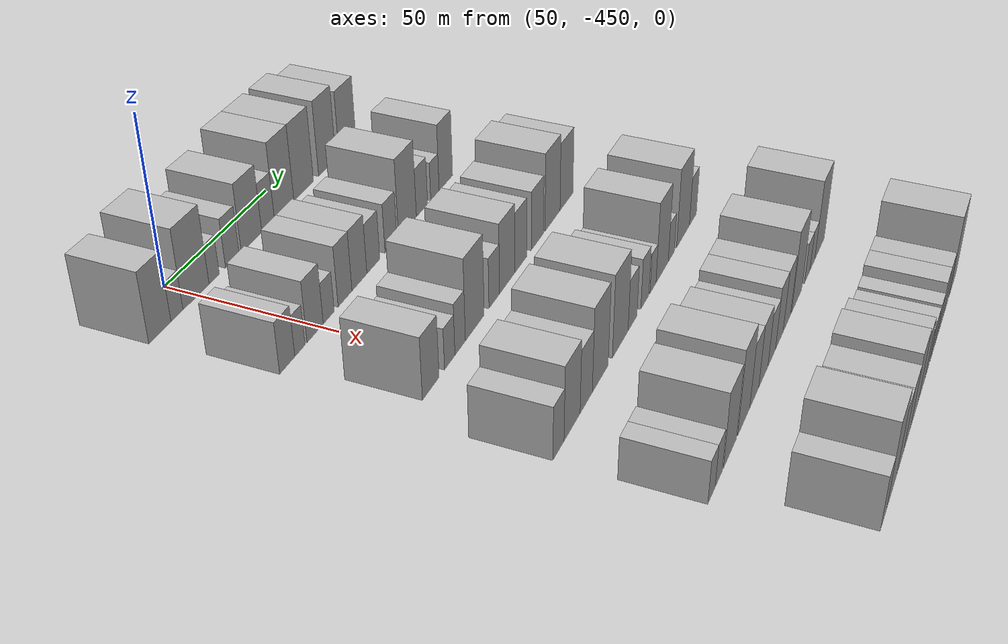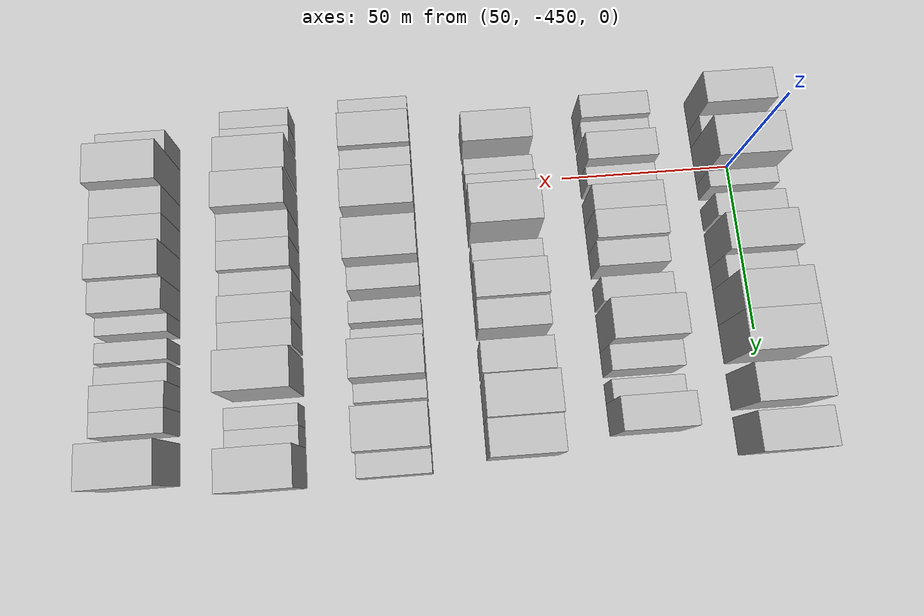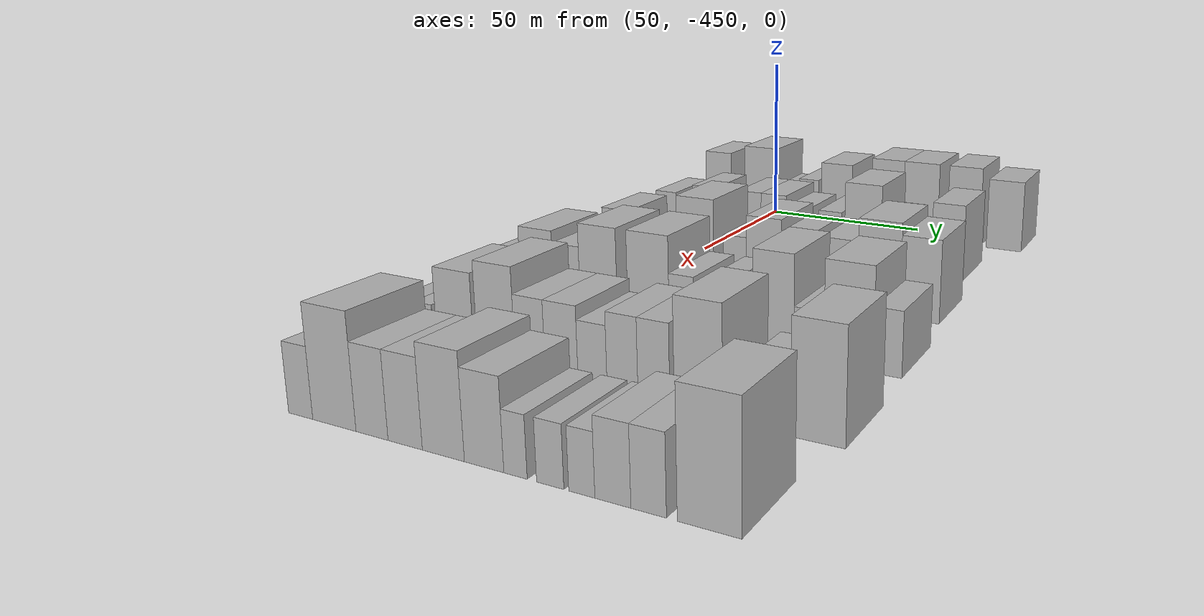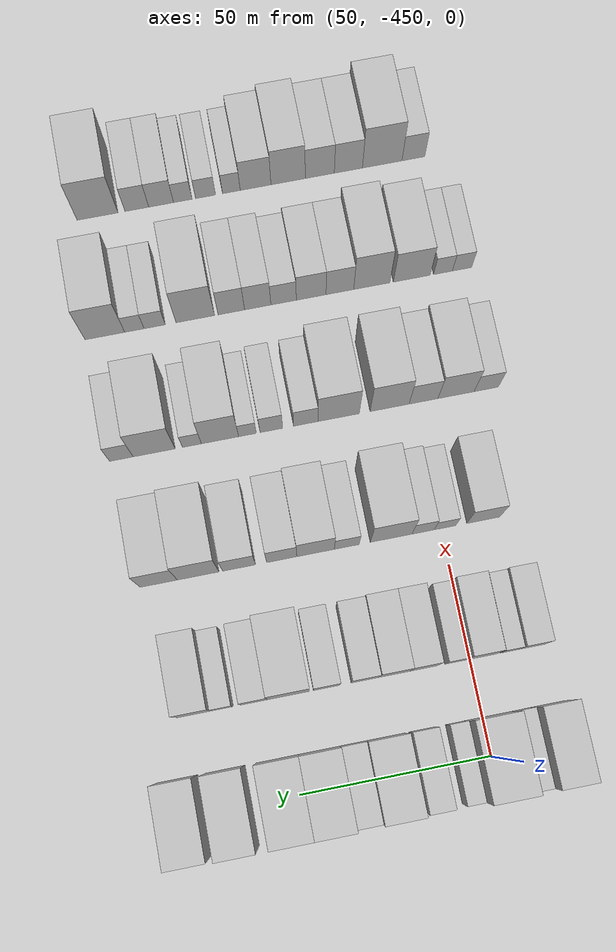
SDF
<sdf version="1.6">
 <world name="default">
  <model name="building_12">
   <static>1</static>
   <pose>50.0000 -466.8531 0 0.000000 0.000000 0.000000</pose>
   <link name="link">
    <pose>0 0 10.50 0 0 0</pose>
    <collision name="collision"><geometry><box><size>20.0000 9.4872 21.0000</size></box></geometry></collision>
    <visual name="visual">
     <cast_shadows>0</cast_shadows>
     <geometry><box><size>20.0000 9.4872 21.0000</size></box></geometry>
     <material>
      <script>
       <uri>model://HANNAS_wall/materials/scripts</uri>
       <uri>model://HANNAS_wall/materials/textures</uri>
       <name>vrc/HANNAS_wall</name>
      </script>
     </material>
    </visual>
   </link>
  </model>
  <model name="building_13">
   <static>1</static>
   <pose>50.0000 -459.4603 0 0.000000 0.000000 0.000000</pose>
   <link name="link">
    <pose>0 0 6.00 0 0 0</pose>
    <collision name="collision"><geometry><box><size>20.0000 5.2984 12.0000</size></box></geometry></collision>
    <visual name="visual">
     <cast_shadows>0</cast_shadows>
     <geometry><box><size>20.0000 5.2984 12.0000</size></box></geometry>
     <material>
      <script>
       <uri>model://HANNAS_wall/materials/scripts</uri>
       <uri>model://HANNAS_wall/materials/textures</uri>
       <name>vrc/HANNAS_wall</name>
      </script>
     </material>
    </visual>
   </link>
  </model>
  <model name="building_14">
   <static>1</static>
   <pose>50.0000 -450.8543 0 0.000000 0.000000 0.000000</pose>
   <link name="link">
    <pose>0 0 12.00 0 0 0</pose>
    <collision name="collision"><geometry><box><size>20.0000 11.9135 24.0000</size></box></geometry></collision>
    <visual name="visual">
     <cast_shadows>0</cast_shadows>
     <geometry><box><size>20.0000 11.9135 24.0000</size></box></geometry>
     <material>
      <script>
       <uri>model://HANNAS_wall/materials/scripts</uri>
       <uri>model://HANNAS_wall/materials/textures</uri>
       <name>vrc/HANNAS_wall</name>
      </script>
     </material>
    </visual>
   </link>
  </model>
  <model name="building_15">
   <static>1</static>
   <pose>50.0000 -442.4723 0 0.000000 0.000000 0.000000</pose>
   <link name="link">
    <pose>0 0 6.00 0 0 0</pose>
    <collision name="collision"><geometry><box><size>20.0000 4.8505 12.0000</size></box></geometry></collision>
    <visual name="visual">
     <cast_shadows>0</cast_shadows>
     <geometry><box><size>20.0000 4.8505 12.0000</size></box></geometry>
     <material>
      <script>
       <uri>model://HANNAS_wall/materials/scripts</uri>
       <uri>model://HANNAS_wall/materials/textures</uri>
       <name>vrc/HANNAS_wall</name>
      </script>
     </material>
    </visual>
   </link>
  </model>
  <model name="building_16">
   <static>1</static>
   <pose>50.0000 -433.7049 0 0.000000 0.000000 0.000000</pose>
   <link name="link">
    <pose>0 0 7.50 0 0 0</pose>
    <collision name="collision"><geometry><box><size>20.0000 6.6844 15.0000</size></box></geometry></collision>
    <visual name="visual">
     <cast_shadows>0</cast_shadows>
     <geometry><box><size>20.0000 6.6844 15.0000</size></box></geometry>
     <material>
      <script>
       <uri>model://HANNAS_wall/materials/scripts</uri>
       <uri>model://HANNAS_wall/materials/textures</uri>
       <name>vrc/HANNAS_wall</name>
      </script>
     </material>
    </visual>
   </link>
  </model>
  <model name="building_17">
   <static>1</static>
   <pose>50.0000 -424.1351 0 0.000000 0.000000 0.000000</pose>
   <link name="link">
    <pose>0 0 10.50 0 0 0</pose>
    <collision name="collision"><geometry><box><size>20.0000 10.4550 21.0000</size></box></geometry></collision>
    <visual name="visual">
     <cast_shadows>0</cast_shadows>
     <geometry><box><size>20.0000 10.4550 21.0000</size></box></geometry>
     <material>
      <script>
       <uri>model://HANNAS_wall/materials/scripts</uri>
       <uri>model://HANNAS_wall/materials/textures</uri>
       <name>vrc/HANNAS_wall</name>
      </script>
     </material>
    </visual>
   </link>
  </model>
  <model name="building_18">
   <static>1</static>
   <pose>50.0000 -415.5861 0 0.000000 0.000000 0.000000</pose>
   <link name="link">
    <pose>0 0 7.50 0 0 0</pose>
    <collision name="collision"><geometry><box><size>20.0000 6.6431 15.0000</size></box></geometry></collision>
    <visual name="visual">
     <cast_shadows>0</cast_shadows>
     <geometry><box><size>20.0000 6.6431 15.0000</size></box></geometry>
     <material>
      <script>
       <uri>model://HANNAS_wall/materials/scripts</uri>
       <uri>model://HANNAS_wall/materials/textures</uri>
       <name>vrc/HANNAS_wall</name>
      </script>
     </material>
    </visual>
   </link>
  </model>
  <model name="building_19">
   <static>1</static>
   <pose>50.0000 -406.9946 0 0.000000 0.000000 0.000000</pose>
   <link name="link">
    <pose>0 0 12.00 0 0 0</pose>
    <collision name="collision"><geometry><box><size>20.0000 10.5398 24.0000</size></box></geometry></collision>
    <visual name="visual">
     <cast_shadows>0</cast_shadows>
     <geometry><box><size>20.0000 10.5398 24.0000</size></box></geometry>
     <material>
      <script>
       <uri>model://HANNAS_wall/materials/scripts</uri>
       <uri>model://HANNAS_wall/materials/textures</uri>
       <name>vrc/HANNAS_wall</name>
      </script>
     </material>
    </visual>
   </link>
  </model>
  <model name="building_20">
   <static>1</static>
   <pose>50.0000 -396.1728 0 0.000000 0.000000 0.000000</pose>
   <link name="link">
    <pose>0 0 12.00 0 0 0</pose>
    <collision name="collision"><geometry><box><size>20.0000 11.1037 24.0000</size></box></geometry></collision>
    <visual name="visual">
     <cast_shadows>0</cast_shadows>
     <geometry><box><size>20.0000 11.1037 24.0000</size></box></geometry>
     <material>
      <script>
       <uri>model://HANNAS_wall/materials/scripts</uri>
       <uri>model://HANNAS_wall/materials/textures</uri>
       <name>vrc/HANNAS_wall</name>
      </script>
     </material>
    </visual>
   </link>
  </model>
  <model name="building_21">
   <static>1</static>
   <pose>50.0000 -382.5288 0 0.000000 0.000000 0.000000</pose>
   <link name="link">
    <pose>0 0 12.00 0 0 0</pose>
    <collision name="collision"><geometry><box><size>20.0000 10.1843 24.0000</size></box></geometry></collision>
    <visual name="visual">
     <cast_shadows>0</cast_shadows>
     <geometry><box><size>20.0000 10.1843 24.0000</size></box></geometry>
     <material>
      <script>
       <uri>model://HANNAS_wall/materials/scripts</uri>
       <uri>model://HANNAS_wall/materials/textures</uri>
       <name>vrc/HANNAS_wall</name>
      </script>
     </material>
    </visual>
   </link>
  </model>
  <model name="building_22">
   <static>1</static>
   <pose>50.0000 -370.1990 0 0.000000 0.000000 0.000000</pose>
   <link name="link">
    <pose>0 0 10.50 0 0 0</pose>
    <collision name="collision"><geometry><box><size>20.0000 10.4753 21.0000</size></box></geometry></collision>
    <visual name="visual">
     <cast_shadows>0</cast_shadows>
     <geometry><box><size>20.0000 10.4753 21.0000</size></box></geometry>
     <material>
      <script>
       <uri>model://HANNAS_wall/materials/scripts</uri>
       <uri>model://HANNAS_wall/materials/textures</uri>
       <name>vrc/HANNAS_wall</name>
      </script>
     </material>
    </visual>
   </link>
  </model>
  <model name="building_141">
   <static>1</static>
   <pose>85.0000 -466.3187 0 0.000000 0.000000 0.000000</pose>
   <link name="link">
    <pose>0 0 7.50 0 0 0</pose>
    <collision name="collision"><geometry><box><size>20.0000 7.1160 15.0000</size></box></geometry></collision>
    <visual name="visual">
     <cast_shadows>0</cast_shadows>
     <geometry><box><size>20.0000 7.1160 15.0000</size></box></geometry>
     <material>
      <script>
       <uri>model://HANNAS_wall/materials/scripts</uri>
       <uri>model://HANNAS_wall/materials/textures</uri>
       <name>vrc/HANNAS_wall</name>
      </script>
     </material>
    </visual>
   </link>
  </model>
  <model name="building_142">
   <static>1</static>
   <pose>85.0000 -460.3251 0 0.000000 0.000000 0.000000</pose>
   <link name="link">
    <pose>0 0 6.00 0 0 0</pose>
    <collision name="collision"><geometry><box><size>20.0000 4.8712 12.0000</size></box></geometry></collision>
    <visual name="visual">
     <cast_shadows>0</cast_shadows>
     <geometry><box><size>20.0000 4.8712 12.0000</size></box></geometry>
     <material>
      <script>
       <uri>model://HANNAS_wall/materials/scripts</uri>
       <uri>model://HANNAS_wall/materials/textures</uri>
       <name>vrc/HANNAS_wall</name>
      </script>
     </material>
    </visual>
   </link>
  </model>
  <model name="building_143">
   <static>1</static>
   <pose>85.0000 -452.8445 0 0.000000 0.000000 0.000000</pose>
   <link name="link">
    <pose>0 0 9.00 0 0 0</pose>
    <collision name="collision"><geometry><box><size>20.0000 8.0899 18.0000</size></box></geometry></collision>
    <visual name="visual">
     <cast_shadows>0</cast_shadows>
     <geometry><box><size>20.0000 8.0899 18.0000</size></box></geometry>
     <material>
      <script>
       <uri>model://HANNAS_wall/materials/scripts</uri>
       <uri>model://HANNAS_wall/materials/textures</uri>
       <name>vrc/HANNAS_wall</name>
      </script>
     </material>
    </visual>
   </link>
  </model>
  <model name="building_144">
   <static>1</static>
   <pose>85.0000 -445.9907 0 0.000000 0.000000 0.000000</pose>
   <link name="link">
    <pose>0 0 6.00 0 0 0</pose>
    <collision name="collision"><geometry><box><size>20.0000 5.6178 12.0000</size></box></geometry></collision>
    <visual name="visual">
     <cast_shadows>0</cast_shadows>
     <geometry><box><size>20.0000 5.6178 12.0000</size></box></geometry>
     <material>
      <script>
       <uri>model://HANNAS_wall/materials/scripts</uri>
       <uri>model://HANNAS_wall/materials/textures</uri>
       <name>vrc/HANNAS_wall</name>
      </script>
     </material>
    </visual>
   </link>
  </model>
  <model name="building_145">
   <static>1</static>
   <pose>85.0000 -437.4917 0 0.000000 0.000000 0.000000</pose>
   <link name="link">
    <pose>0 0 9.00 0 0 0</pose>
    <collision name="collision"><geometry><box><size>20.0000 7.3803 18.0000</size></box></geometry></collision>
    <visual name="visual">
     <cast_shadows>0</cast_shadows>
     <geometry><box><size>20.0000 7.3803 18.0000</size></box></geometry>
     <material>
      <script>
       <uri>model://HANNAS_wall/materials/scripts</uri>
       <uri>model://HANNAS_wall/materials/textures</uri>
       <name>vrc/HANNAS_wall</name>
      </script>
     </material>
    </visual>
   </link>
  </model>
  <model name="building_146">
   <static>1</static>
   <pose>85.0000 -429.7199 0 0.000000 0.000000 0.000000</pose>
   <link name="link">
    <pose>0 0 9.00 0 0 0</pose>
    <collision name="collision"><geometry><box><size>20.0000 8.1631 18.0000</size></box></geometry></collision>
    <visual name="visual">
     <cast_shadows>0</cast_shadows>
     <geometry><box><size>20.0000 8.1631 18.0000</size></box></geometry>
     <material>
      <script>
       <uri>model://HANNAS_wall/materials/scripts</uri>
       <uri>model://HANNAS_wall/materials/textures</uri>
       <name>vrc/HANNAS_wall</name>
      </script>
     </material>
    </visual>
   </link>
  </model>
  <model name="building_147">
   <static>1</static>
   <pose>85.0000 -421.9859 0 0.000000 0.000000 0.000000</pose>
   <link name="link">
    <pose>0 0 7.50 0 0 0</pose>
    <collision name="collision"><geometry><box><size>20.0000 7.3049 15.0000</size></box></geometry></collision>
    <visual name="visual">
     <cast_shadows>0</cast_shadows>
     <geometry><box><size>20.0000 7.3049 15.0000</size></box></geometry>
     <material>
      <script>
       <uri>model://HANNAS_wall/materials/scripts</uri>
       <uri>model://HANNAS_wall/materials/textures</uri>
       <name>vrc/HANNAS_wall</name>
      </script>
     </material>
    </visual>
   </link>
  </model>
  <model name="building_148">
   <static>1</static>
   <pose>85.0000 -411.8537 0 0.000000 0.000000 0.000000</pose>
   <link name="link">
    <pose>0 0 7.50 0 0 0</pose>
    <collision name="collision"><geometry><box><size>20.0000 6.9596 15.0000</size></box></geometry></collision>
    <visual name="visual">
     <cast_shadows>0</cast_shadows>
     <geometry><box><size>20.0000 6.9596 15.0000</size></box></geometry>
     <material>
      <script>
       <uri>model://HANNAS_wall/materials/scripts</uri>
       <uri>model://HANNAS_wall/materials/textures</uri>
       <name>vrc/HANNAS_wall</name>
      </script>
     </material>
    </visual>
   </link>
  </model>
  <model name="building_149">
   <static>1</static>
   <pose>85.0000 -401.9026 0 0.000000 0.000000 0.000000</pose>
   <link name="link">
    <pose>0 0 12.00 0 0 0</pose>
    <collision name="collision"><geometry><box><size>20.0000 10.9426 24.0000</size></box></geometry></collision>
    <visual name="visual">
     <cast_shadows>0</cast_shadows>
     <geometry><box><size>20.0000 10.9426 24.0000</size></box></geometry>
     <material>
      <script>
       <uri>model://HANNAS_wall/materials/scripts</uri>
       <uri>model://HANNAS_wall/materials/textures</uri>
       <name>vrc/HANNAS_wall</name>
      </script>
     </material>
    </visual>
   </link>
  </model>
  <model name="building_150">
   <static>1</static>
   <pose>85.0000 -392.8915 0 0.000000 0.000000 0.000000</pose>
   <link name="link">
    <pose>0 0 7.50 0 0 0</pose>
    <collision name="collision"><geometry><box><size>20.0000 7.0797 15.0000</size></box></geometry></collision>
    <visual name="visual">
     <cast_shadows>0</cast_shadows>
     <geometry><box><size>20.0000 7.0797 15.0000</size></box></geometry>
     <material>
      <script>
       <uri>model://HANNAS_wall/materials/scripts</uri>
       <uri>model://HANNAS_wall/materials/textures</uri>
       <name>vrc/HANNAS_wall</name>
      </script>
     </material>
    </visual>
   </link>
  </model>
  <model name="building_151">
   <static>1</static>
   <pose>85.0000 -384.6035 0 0.000000 0.000000 0.000000</pose>
   <link name="link">
    <pose>0 0 6.00 0 0 0</pose>
    <collision name="collision"><geometry><box><size>20.0000 5.4963 12.0000</size></box></geometry></collision>
    <visual name="visual">
     <cast_shadows>0</cast_shadows>
     <geometry><box><size>20.0000 5.4963 12.0000</size></box></geometry>
     <material>
      <script>
       <uri>model://HANNAS_wall/materials/scripts</uri>
       <uri>model://HANNAS_wall/materials/textures</uri>
       <name>vrc/HANNAS_wall</name>
      </script>
     </material>
    </visual>
   </link>
  </model>
  <model name="building_152">
   <static>1</static>
   <pose>85.0000 -377.3533 0 0.000000 0.000000 0.000000</pose>
   <link name="link">
    <pose>0 0 10.50 0 0 0</pose>
    <collision name="collision"><geometry><box><size>20.0000 9.0041 21.0000</size></box></geometry></collision>
    <visual name="visual">
     <cast_shadows>0</cast_shadows>
     <geometry><box><size>20.0000 9.0041 21.0000</size></box></geometry>
     <material>
      <script>
       <uri>model://HANNAS_wall/materials/scripts</uri>
       <uri>model://HANNAS_wall/materials/textures</uri>
       <name>vrc/HANNAS_wall</name>
      </script>
     </material>
    </visual>
   </link>
  </model>
  <model name="building_278">
   <static>1</static>
   <pose>120.0000 -461.3659 0 0.000000 0.000000 0.000000</pose>
   <link name="link">
    <pose>0 0 9.00 0 0 0</pose>
    <collision name="collision"><geometry><box><size>20.0000 8.9930 18.0000</size></box></geometry></collision>
    <visual name="visual">
     <cast_shadows>0</cast_shadows>
     <geometry><box><size>20.0000 8.9930 18.0000</size></box></geometry>
     <material>
      <script>
       <uri>model://HANNAS_wall/materials/scripts</uri>
       <uri>model://HANNAS_wall/materials/textures</uri>
       <name>vrc/HANNAS_wall</name>
      </script>
     </material>
    </visual>
   </link>
  </model>
  <model name="building_279">
   <static>1</static>
   <pose>120.0000 -450.9233 0 0.000000 0.000000 0.000000</pose>
   <link name="link">
    <pose>0 0 6.00 0 0 0</pose>
    <collision name="collision"><geometry><box><size>20.0000 5.8922 12.0000</size></box></geometry></collision>
    <visual name="visual">
     <cast_shadows>0</cast_shadows>
     <geometry><box><size>20.0000 5.8922 12.0000</size></box></geometry>
     <material>
      <script>
       <uri>model://HANNAS_wall/materials/scripts</uri>
       <uri>model://HANNAS_wall/materials/textures</uri>
       <name>vrc/HANNAS_wall</name>
      </script>
     </material>
    </visual>
   </link>
  </model>
  <model name="building_280">
   <static>1</static>
   <pose>120.0000 -444.9455 0 0.000000 0.000000 0.000000</pose>
   <link name="link">
    <pose>0 0 7.50 0 0 0</pose>
    <collision name="collision"><geometry><box><size>20.0000 6.0633 15.0000</size></box></geometry></collision>
    <visual name="visual">
     <cast_shadows>0</cast_shadows>
     <geometry><box><size>20.0000 6.0633 15.0000</size></box></geometry>
     <material>
      <script>
       <uri>model://HANNAS_wall/materials/scripts</uri>
       <uri>model://HANNAS_wall/materials/textures</uri>
       <name>vrc/HANNAS_wall</name>
      </script>
     </material>
    </visual>
   </link>
  </model>
  <model name="building_281">
   <static>1</static>
   <pose>120.0000 -436.2726 0 0.000000 0.000000 0.000000</pose>
   <link name="link">
    <pose>0 0 12.00 0 0 0</pose>
    <collision name="collision"><geometry><box><size>20.0000 11.2824 24.0000</size></box></geometry></collision>
    <visual name="visual">
     <cast_shadows>0</cast_shadows>
     <geometry><box><size>20.0000 11.2824 24.0000</size></box></geometry>
     <material>
      <script>
       <uri>model://HANNAS_wall/materials/scripts</uri>
       <uri>model://HANNAS_wall/materials/textures</uri>
       <name>vrc/HANNAS_wall</name>
      </script>
     </material>
    </visual>
   </link>
  </model>
  <model name="building_282">
   <static>1</static>
   <pose>120.0000 -424.2702 0 0.000000 0.000000 0.000000</pose>
   <link name="link">
    <pose>0 0 7.50 0 0 0</pose>
    <collision name="collision"><geometry><box><size>20.0000 6.7225 15.0000</size></box></geometry></collision>
    <visual name="visual">
     <cast_shadows>0</cast_shadows>
     <geometry><box><size>20.0000 6.7225 15.0000</size></box></geometry>
     <material>
      <script>
       <uri>model://HANNAS_wall/materials/scripts</uri>
       <uri>model://HANNAS_wall/materials/textures</uri>
       <name>vrc/HANNAS_wall</name>
      </script>
     </material>
    </visual>
   </link>
  </model>
  <model name="building_283">
   <static>1</static>
   <pose>120.0000 -415.8707 0 0.000000 0.000000 0.000000</pose>
   <link name="link">
    <pose>0 0 10.50 0 0 0</pose>
    <collision name="collision"><geometry><box><size>20.0000 10.0764 21.0000</size></box></geometry></collision>
    <visual name="visual">
     <cast_shadows>0</cast_shadows>
     <geometry><box><size>20.0000 10.0764 21.0000</size></box></geometry>
     <material>
      <script>
       <uri>model://HANNAS_wall/materials/scripts</uri>
       <uri>model://HANNAS_wall/materials/textures</uri>
       <name>vrc/HANNAS_wall</name>
      </script>
     </material>
    </visual>
   </link>
  </model>
  <model name="building_284">
   <static>1</static>
   <pose>120.0000 -406.7790 0 0.000000 0.000000 0.000000</pose>
   <link name="link">
    <pose>0 0 9.00 0 0 0</pose>
    <collision name="collision"><geometry><box><size>20.0000 8.1071 18.0000</size></box></geometry></collision>
    <visual name="visual">
     <cast_shadows>0</cast_shadows>
     <geometry><box><size>20.0000 8.1071 18.0000</size></box></geometry>
     <material>
      <script>
       <uri>model://HANNAS_wall/materials/scripts</uri>
       <uri>model://HANNAS_wall/materials/textures</uri>
       <name>vrc/HANNAS_wall</name>
      </script>
     </material>
    </visual>
   </link>
  </model>
  <model name="building_285">
   <static>1</static>
   <pose>120.0000 -395.3179 0 0.000000 0.000000 0.000000</pose>
   <link name="link">
    <pose>0 0 9.00 0 0 0</pose>
    <collision name="collision"><geometry><box><size>20.0000 8.8151 18.0000</size></box></geometry></collision>
    <visual name="visual">
     <cast_shadows>0</cast_shadows>
     <geometry><box><size>20.0000 8.8151 18.0000</size></box></geometry>
     <material>
      <script>
       <uri>model://HANNAS_wall/materials/scripts</uri>
       <uri>model://HANNAS_wall/materials/textures</uri>
       <name>vrc/HANNAS_wall</name>
      </script>
     </material>
    </visual>
   </link>
  </model>
  <model name="building_286">
   <static>1</static>
   <pose>120.0000 -384.3407 0 0.000000 0.000000 0.000000</pose>
   <link name="link">
    <pose>0 0 12.00 0 0 0</pose>
    <collision name="collision"><geometry><box><size>20.0000 11.1392 24.0000</size></box></geometry></collision>
    <visual name="visual">
     <cast_shadows>0</cast_shadows>
     <geometry><box><size>20.0000 11.1392 24.0000</size></box></geometry>
     <material>
      <script>
       <uri>model://HANNAS_wall/materials/scripts</uri>
       <uri>model://HANNAS_wall/materials/textures</uri>
       <name>vrc/HANNAS_wall</name>
      </script>
     </material>
    </visual>
   </link>
  </model>
  <model name="building_287">
   <static>1</static>
   <pose>120.0000 -373.8000 0 0.000000 0.000000 0.000000</pose>
   <link name="link">
    <pose>0 0 10.50 0 0 0</pose>
    <collision name="collision"><geometry><box><size>20.0000 9.9423 21.0000</size></box></geometry></collision>
    <visual name="visual">
     <cast_shadows>0</cast_shadows>
     <geometry><box><size>20.0000 9.9423 21.0000</size></box></geometry>
     <material>
      <script>
       <uri>model://HANNAS_wall/materials/scripts</uri>
       <uri>model://HANNAS_wall/materials/textures</uri>
       <name>vrc/HANNAS_wall</name>
      </script>
     </material>
    </visual>
   </link>
  </model>
  <model name="building_403">
   <static>1</static>
   <pose>155.0000 -470.1493 0 0.000000 0.000000 0.000000</pose>
   <link name="link">
    <pose>0 0 7.50 0 0 0</pose>
    <collision name="collision"><geometry><box><size>20.0000 6.7503 15.0000</size></box></geometry></collision>
    <visual name="visual">
     <cast_shadows>0</cast_shadows>
     <geometry><box><size>20.0000 6.7503 15.0000</size></box></geometry>
     <material>
      <script>
       <uri>model://HANNAS_wall/materials/scripts</uri>
       <uri>model://HANNAS_wall/materials/textures</uri>
       <name>vrc/HANNAS_wall</name>
      </script>
     </material>
    </visual>
   </link>
  </model>
  <model name="building_404">
   <static>1</static>
   <pose>155.0000 -461.7266 0 0.000000 0.000000 0.000000</pose>
   <link name="link">
    <pose>0 0 10.50 0 0 0</pose>
    <collision name="collision"><geometry><box><size>20.0000 10.0951 21.0000</size></box></geometry></collision>
    <visual name="visual">
     <cast_shadows>0</cast_shadows>
     <geometry><box><size>20.0000 10.0951 21.0000</size></box></geometry>
     <material>
      <script>
       <uri>model://HANNAS_wall/materials/scripts</uri>
       <uri>model://HANNAS_wall/materials/textures</uri>
       <name>vrc/HANNAS_wall</name>
      </script>
     </material>
    </visual>
   </link>
  </model>
  <model name="building_405">
   <static>1</static>
   <pose>155.0000 -452.6685 0 0.000000 0.000000 0.000000</pose>
   <link name="link">
    <pose>0 0 9.00 0 0 0</pose>
    <collision name="collision"><geometry><box><size>20.0000 8.0211 18.0000</size></box></geometry></collision>
    <visual name="visual">
     <cast_shadows>0</cast_shadows>
     <geometry><box><size>20.0000 8.0211 18.0000</size></box></geometry>
     <material>
      <script>
       <uri>model://HANNAS_wall/materials/scripts</uri>
       <uri>model://HANNAS_wall/materials/textures</uri>
       <name>vrc/HANNAS_wall</name>
      </script>
     </material>
    </visual>
   </link>
  </model>
  <model name="building_406">
   <static>1</static>
   <pose>155.0000 -443.2501 0 0.000000 0.000000 0.000000</pose>
   <link name="link">
    <pose>0 0 12.00 0 0 0</pose>
    <collision name="collision"><geometry><box><size>20.0000 10.8156 24.0000</size></box></geometry></collision>
    <visual name="visual">
     <cast_shadows>0</cast_shadows>
     <geometry><box><size>20.0000 10.8156 24.0000</size></box></geometry>
     <material>
      <script>
       <uri>model://HANNAS_wall/materials/scripts</uri>
       <uri>model://HANNAS_wall/materials/textures</uri>
       <name>vrc/HANNAS_wall</name>
      </script>
     </material>
    </visual>
   </link>
  </model>
  <model name="building_407">
   <static>1</static>
   <pose>155.0000 -429.1231 0 0.000000 0.000000 0.000000</pose>
   <link name="link">
    <pose>0 0 12.00 0 0 0</pose>
    <collision name="collision"><geometry><box><size>20.0000 11.4385 24.0000</size></box></geometry></collision>
    <visual name="visual">
     <cast_shadows>0</cast_shadows>
     <geometry><box><size>20.0000 11.4385 24.0000</size></box></geometry>
     <material>
      <script>
       <uri>model://HANNAS_wall/materials/scripts</uri>
       <uri>model://HANNAS_wall/materials/textures</uri>
       <name>vrc/HANNAS_wall</name>
      </script>
     </material>
    </visual>
   </link>
  </model>
  <model name="building_408">
   <static>1</static>
   <pose>155.0000 -420.0578 0 0.000000 0.000000 0.000000</pose>
   <link name="link">
    <pose>0 0 7.50 0 0 0</pose>
    <collision name="collision"><geometry><box><size>20.0000 6.6922 15.0000</size></box></geometry></collision>
    <visual name="visual">
     <cast_shadows>0</cast_shadows>
     <geometry><box><size>20.0000 6.6922 15.0000</size></box></geometry>
     <material>
      <script>
       <uri>model://HANNAS_wall/materials/scripts</uri>
       <uri>model://HANNAS_wall/materials/textures</uri>
       <name>vrc/HANNAS_wall</name>
      </script>
     </material>
    </visual>
   </link>
  </model>
  <model name="building_409">
   <static>1</static>
   <pose>155.0000 -410.5954 0 0.000000 0.000000 0.000000</pose>
   <link name="link">
    <pose>0 0 7.50 0 0 0</pose>
    <collision name="collision"><geometry><box><size>20.0000 6.2326 15.0000</size></box></geometry></collision>
    <visual name="visual">
     <cast_shadows>0</cast_shadows>
     <geometry><box><size>20.0000 6.2326 15.0000</size></box></geometry>
     <material>
      <script>
       <uri>model://HANNAS_wall/materials/scripts</uri>
       <uri>model://HANNAS_wall/materials/textures</uri>
       <name>vrc/HANNAS_wall</name>
      </script>
     </material>
    </visual>
   </link>
  </model>
  <model name="building_410">
   <static>1</static>
   <pose>155.0000 -404.0466 0 0.000000 0.000000 0.000000</pose>
   <link name="link">
    <pose>0 0 6.00 0 0 0</pose>
    <collision name="collision"><geometry><box><size>20.0000 4.8650 12.0000</size></box></geometry></collision>
    <visual name="visual">
     <cast_shadows>0</cast_shadows>
     <geometry><box><size>20.0000 4.8650 12.0000</size></box></geometry>
     <material>
      <script>
       <uri>model://HANNAS_wall/materials/scripts</uri>
       <uri>model://HANNAS_wall/materials/textures</uri>
       <name>vrc/HANNAS_wall</name>
      </script>
     </material>
    </visual>
   </link>
  </model>
  <model name="building_411">
   <static>1</static>
   <pose>155.0000 -396.5102 0 0.000000 0.000000 0.000000</pose>
   <link name="link">
    <pose>0 0 12.00 0 0 0</pose>
    <collision name="collision"><geometry><box><size>20.0000 10.2078 24.0000</size></box></geometry></collision>
    <visual name="visual">
     <cast_shadows>0</cast_shadows>
     <geometry><box><size>20.0000 10.2078 24.0000</size></box></geometry>
     <material>
      <script>
       <uri>model://HANNAS_wall/materials/scripts</uri>
       <uri>model://HANNAS_wall/materials/textures</uri>
       <name>vrc/HANNAS_wall</name>
      </script>
     </material>
    </visual>
   </link>
  </model>
  <model name="building_412">
   <static>1</static>
   <pose>155.0000 -388.8159 0 0.000000 0.000000 0.000000</pose>
   <link name="link">
    <pose>0 0 6.00 0 0 0</pose>
    <collision name="collision"><geometry><box><size>20.0000 5.1808 12.0000</size></box></geometry></collision>
    <visual name="visual">
     <cast_shadows>0</cast_shadows>
     <geometry><box><size>20.0000 5.1808 12.0000</size></box></geometry>
     <material>
      <script>
       <uri>model://HANNAS_wall/materials/scripts</uri>
       <uri>model://HANNAS_wall/materials/textures</uri>
       <name>vrc/HANNAS_wall</name>
      </script>
     </material>
    </visual>
   </link>
  </model>
  <model name="building_413">
   <static>1</static>
   <pose>155.0000 -378.4861 0 0.000000 0.000000 0.000000</pose>
   <link name="link">
    <pose>0 0 12.00 0 0 0</pose>
    <collision name="collision"><geometry><box><size>20.0000 11.4788 24.0000</size></box></geometry></collision>
    <visual name="visual">
     <cast_shadows>0</cast_shadows>
     <geometry><box><size>20.0000 11.4788 24.0000</size></box></geometry>
     <material>
      <script>
       <uri>model://HANNAS_wall/materials/scripts</uri>
       <uri>model://HANNAS_wall/materials/textures</uri>
       <name>vrc/HANNAS_wall</name>
      </script>
     </material>
    </visual>
   </link>
  </model>
  <model name="building_414">
   <static>1</static>
   <pose>155.0000 -369.5400 0 0.000000 0.000000 0.000000</pose>
   <link name="link">
    <pose>0 0 7.50 0 0 0</pose>
    <collision name="collision"><geometry><box><size>20.0000 6.4135 15.0000</size></box></geometry></collision>
    <visual name="visual">
     <cast_shadows>0</cast_shadows>
     <geometry><box><size>20.0000 6.4135 15.0000</size></box></geometry>
     <material>
      <script>
       <uri>model://HANNAS_wall/materials/scripts</uri>
       <uri>model://HANNAS_wall/materials/textures</uri>
       <name>vrc/HANNAS_wall</name>
      </script>
     </material>
    </visual>
   </link>
  </model>
  <model name="building_530">
   <static>1</static>
   <pose>190.0000 -471.1792 0 0.000000 0.000000 0.000000</pose>
   <link name="link">
    <pose>0 0 6.00 0 0 0</pose>
    <collision name="collision"><geometry><box><size>20.0000 5.4702 12.0000</size></box></geometry></collision>
    <visual name="visual">
     <cast_shadows>0</cast_shadows>
     <geometry><box><size>20.0000 5.4702 12.0000</size></box></geometry>
     <material>
      <script>
       <uri>model://HANNAS_wall/materials/scripts</uri>
       <uri>model://HANNAS_wall/materials/textures</uri>
       <name>vrc/HANNAS_wall</name>
      </script>
     </material>
    </visual>
   </link>
  </model>
  <model name="building_531">
   <static>1</static>
   <pose>190.0000 -465.7754 0 0.000000 0.000000 0.000000</pose>
   <link name="link">
    <pose>0 0 6.00 0 0 0</pose>
    <collision name="collision"><geometry><box><size>20.0000 5.3374 12.0000</size></box></geometry></collision>
    <visual name="visual">
     <cast_shadows>0</cast_shadows>
     <geometry><box><size>20.0000 5.3374 12.0000</size></box></geometry>
     <material>
      <script>
       <uri>model://HANNAS_wall/materials/scripts</uri>
       <uri>model://HANNAS_wall/materials/textures</uri>
       <name>vrc/HANNAS_wall</name>
      </script>
     </material>
    </visual>
   </link>
  </model>
  <model name="building_532">
   <static>1</static>
   <pose>190.0000 -456.8914 0 0.000000 0.000000 0.000000</pose>
   <link name="link">
    <pose>0 0 10.50 0 0 0</pose>
    <collision name="collision"><geometry><box><size>20.0000 10.4305 21.0000</size></box></geometry></collision>
    <visual name="visual">
     <cast_shadows>0</cast_shadows>
     <geometry><box><size>20.0000 10.4305 21.0000</size></box></geometry>
     <material>
      <script>
       <uri>model://HANNAS_wall/materials/scripts</uri>
       <uri>model://HANNAS_wall/materials/textures</uri>
       <name>vrc/HANNAS_wall</name>
      </script>
     </material>
    </visual>
   </link>
  </model>
  <model name="building_533">
   <static>1</static>
   <pose>190.0000 -445.5626 0 0.000000 0.000000 0.000000</pose>
   <link name="link">
    <pose>0 0 12.00 0 0 0</pose>
    <collision name="collision"><geometry><box><size>20.0000 10.2271 24.0000</size></box></geometry></collision>
    <visual name="visual">
     <cast_shadows>0</cast_shadows>
     <geometry><box><size>20.0000 10.2271 24.0000</size></box></geometry>
     <material>
      <script>
       <uri>model://HANNAS_wall/materials/scripts</uri>
       <uri>model://HANNAS_wall/materials/textures</uri>
       <name>vrc/HANNAS_wall</name>
      </script>
     </material>
    </visual>
   </link>
  </model>
  <model name="building_534">
   <static>1</static>
   <pose>190.0000 -436.5314 0 0.000000 0.000000 0.000000</pose>
   <link name="link">
    <pose>0 0 9.00 0 0 0</pose>
    <collision name="collision"><geometry><box><size>20.0000 7.8354 18.0000</size></box></geometry></collision>
    <visual name="visual">
     <cast_shadows>0</cast_shadows>
     <geometry><box><size>20.0000 7.8354 18.0000</size></box></geometry>
     <material>
      <script>
       <uri>model://HANNAS_wall/materials/scripts</uri>
       <uri>model://HANNAS_wall/materials/textures</uri>
       <name>vrc/HANNAS_wall</name>
      </script>
     </material>
    </visual>
   </link>
  </model>
  <model name="building_535">
   <static>1</static>
   <pose>190.0000 -428.4371 0 0.000000 0.000000 0.000000</pose>
   <link name="link">
    <pose>0 0 9.00 0 0 0</pose>
    <collision name="collision"><geometry><box><size>20.0000 8.3531 18.0000</size></box></geometry></collision>
    <visual name="visual">
     <cast_shadows>0</cast_shadows>
     <geometry><box><size>20.0000 8.3531 18.0000</size></box></geometry>
     <material>
      <script>
       <uri>model://HANNAS_wall/materials/scripts</uri>
       <uri>model://HANNAS_wall/materials/textures</uri>
       <name>vrc/HANNAS_wall</name>
      </script>
     </material>
    </visual>
   </link>
  </model>
  <model name="building_536">
   <static>1</static>
   <pose>190.0000 -420.6805 0 0.000000 0.000000 0.000000</pose>
   <link name="link">
    <pose>0 0 7.50 0 0 0</pose>
    <collision name="collision"><geometry><box><size>20.0000 7.1601 15.0000</size></box></geometry></collision>
    <visual name="visual">
     <cast_shadows>0</cast_shadows>
     <geometry><box><size>20.0000 7.1601 15.0000</size></box></geometry>
     <material>
      <script>
       <uri>model://HANNAS_wall/materials/scripts</uri>
       <uri>model://HANNAS_wall/materials/textures</uri>
       <name>vrc/HANNAS_wall</name>
      </script>
     </material>
    </visual>
   </link>
  </model>
  <model name="building_537">
   <static>1</static>
   <pose>190.0000 -413.4014 0 0.000000 0.000000 0.000000</pose>
   <link name="link">
    <pose>0 0 9.00 0 0 0</pose>
    <collision name="collision"><geometry><box><size>20.0000 7.3981 18.0000</size></box></geometry></collision>
    <visual name="visual">
     <cast_shadows>0</cast_shadows>
     <geometry><box><size>20.0000 7.3981 18.0000</size></box></geometry>
     <material>
      <script>
       <uri>model://HANNAS_wall/materials/scripts</uri>
       <uri>model://HANNAS_wall/materials/textures</uri>
       <name>vrc/HANNAS_wall</name>
      </script>
     </material>
    </visual>
   </link>
  </model>
  <model name="building_538">
   <static>1</static>
   <pose>190.0000 -405.9968 0 0.000000 0.000000 0.000000</pose>
   <link name="link">
    <pose>0 0 9.00 0 0 0</pose>
    <collision name="collision"><geometry><box><size>20.0000 7.4110 18.0000</size></box></geometry></collision>
    <visual name="visual">
     <cast_shadows>0</cast_shadows>
     <geometry><box><size>20.0000 7.4110 18.0000</size></box></geometry>
     <material>
      <script>
       <uri>model://HANNAS_wall/materials/scripts</uri>
       <uri>model://HANNAS_wall/materials/textures</uri>
       <name>vrc/HANNAS_wall</name>
      </script>
     </material>
    </visual>
   </link>
  </model>
  <model name="building_539">
   <static>1</static>
   <pose>190.0000 -395.8957 0 0.000000 0.000000 0.000000</pose>
   <link name="link">
    <pose>0 0 12.00 0 0 0</pose>
    <collision name="collision"><geometry><box><size>20.0000 10.7911 24.0000</size></box></geometry></collision>
    <visual name="visual">
     <cast_shadows>0</cast_shadows>
     <geometry><box><size>20.0000 10.7911 24.0000</size></box></geometry>
     <material>
      <script>
       <uri>model://HANNAS_wall/materials/scripts</uri>
       <uri>model://HANNAS_wall/materials/textures</uri>
       <name>vrc/HANNAS_wall</name>
      </script>
     </material>
    </visual>
   </link>
  </model>
  <model name="building_540">
   <static>1</static>
   <pose>190.0000 -384.5393 0 0.000000 0.000000 0.000000</pose>
   <link name="link">
    <pose>0 0 6.00 0 0 0</pose>
    <collision name="collision"><geometry><box><size>20.0000 5.9216 12.0000</size></box></geometry></collision>
    <visual name="visual">
     <cast_shadows>0</cast_shadows>
     <geometry><box><size>20.0000 5.9216 12.0000</size></box></geometry>
     <material>
      <script>
       <uri>model://HANNAS_wall/materials/scripts</uri>
       <uri>model://HANNAS_wall/materials/textures</uri>
       <name>vrc/HANNAS_wall</name>
      </script>
     </material>
    </visual>
   </link>
  </model>
  <model name="building_541">
   <static>1</static>
   <pose>190.0000 -378.8769 0 0.000000 0.000000 0.000000</pose>
   <link name="link">
    <pose>0 0 6.00 0 0 0</pose>
    <collision name="collision"><geometry><box><size>20.0000 5.4032 12.0000</size></box></geometry></collision>
    <visual name="visual">
     <cast_shadows>0</cast_shadows>
     <geometry><box><size>20.0000 5.4032 12.0000</size></box></geometry>
     <material>
      <script>
       <uri>model://HANNAS_wall/materials/scripts</uri>
       <uri>model://HANNAS_wall/materials/textures</uri>
       <name>vrc/HANNAS_wall</name>
      </script>
     </material>
    </visual>
   </link>
  </model>
  <model name="building_542">
   <static>1</static>
   <pose>190.0000 -370.6545 0 0.000000 0.000000 0.000000</pose>
   <link name="link">
    <pose>0 0 12.00 0 0 0</pose>
    <collision name="collision"><geometry><box><size>20.0000 11.0416 24.0000</size></box></geometry></collision>
    <visual name="visual">
     <cast_shadows>0</cast_shadows>
     <geometry><box><size>20.0000 11.0416 24.0000</size></box></geometry>
     <material>
      <script>
       <uri>model://HANNAS_wall/materials/scripts</uri>
       <uri>model://HANNAS_wall/materials/textures</uri>
       <name>vrc/HANNAS_wall</name>
      </script>
     </material>
    </visual>
   </link>
  </model>
  <model name="building_661">
   <static>1</static>
   <pose>225.0000 -464.8530 0 0.000000 0.000000 0.000000</pose>
   <link name="link">
    <pose>0 0 7.50 0 0 0</pose>
    <collision name="collision"><geometry><box><size>20.0000 6.6140 15.0000</size></box></geometry></collision>
    <visual name="visual">
     <cast_shadows>0</cast_shadows>
     <geometry><box><size>20.0000 6.6140 15.0000</size></box></geometry>
     <material>
      <script>
       <uri>model://HANNAS_wall/materials/scripts</uri>
       <uri>model://HANNAS_wall/materials/textures</uri>
       <name>vrc/HANNAS_wall</name>
      </script>
     </material>
    </visual>
   </link>
  </model>
  <model name="building_662">
   <static>1</static>
   <pose>225.0000 -455.8256 0 0.000000 0.000000 0.000000</pose>
   <link name="link">
    <pose>0 0 12.00 0 0 0</pose>
    <collision name="collision"><geometry><box><size>20.0000 11.4408 24.0000</size></box></geometry></collision>
    <visual name="visual">
     <cast_shadows>0</cast_shadows>
     <geometry><box><size>20.0000 11.4408 24.0000</size></box></geometry>
     <material>
      <script>
       <uri>model://HANNAS_wall/materials/scripts</uri>
       <uri>model://HANNAS_wall/materials/textures</uri>
       <name>vrc/HANNAS_wall</name>
      </script>
     </material>
    </visual>
   </link>
  </model>
  <model name="building_663">
   <static>1</static>
   <pose>225.0000 -446.0461 0 0.000000 0.000000 0.000000</pose>
   <link name="link">
    <pose>0 0 9.00 0 0 0</pose>
    <collision name="collision"><geometry><box><size>20.0000 8.1182 18.0000</size></box></geometry></collision>
    <visual name="visual">
     <cast_shadows>0</cast_shadows>
     <geometry><box><size>20.0000 8.1182 18.0000</size></box></geometry>
     <material>
      <script>
       <uri>model://HANNAS_wall/materials/scripts</uri>
       <uri>model://HANNAS_wall/materials/textures</uri>
       <name>vrc/HANNAS_wall</name>
      </script>
     </material>
    </visual>
   </link>
  </model>
  <model name="building_664">
   <static>1</static>
   <pose>225.0000 -437.7958 0 0.000000 0.000000 0.000000</pose>
   <link name="link">
    <pose>0 0 9.00 0 0 0</pose>
    <collision name="collision"><geometry><box><size>20.0000 8.3826 18.0000</size></box></geometry></collision>
    <visual name="visual">
     <cast_shadows>0</cast_shadows>
     <geometry><box><size>20.0000 8.3826 18.0000</size></box></geometry>
     <material>
      <script>
       <uri>model://HANNAS_wall/materials/scripts</uri>
       <uri>model://HANNAS_wall/materials/textures</uri>
       <name>vrc/HANNAS_wall</name>
      </script>
     </material>
    </visual>
   </link>
  </model>
  <model name="building_665">
   <static>1</static>
   <pose>225.0000 -428.6785 0 0.000000 0.000000 0.000000</pose>
   <link name="link">
    <pose>0 0 10.50 0 0 0</pose>
    <collision name="collision"><geometry><box><size>20.0000 9.8520 21.0000</size></box></geometry></collision>
    <visual name="visual">
     <cast_shadows>0</cast_shadows>
     <geometry><box><size>20.0000 9.8520 21.0000</size></box></geometry>
     <material>
      <script>
       <uri>model://HANNAS_wall/materials/scripts</uri>
       <uri>model://HANNAS_wall/materials/textures</uri>
       <name>vrc/HANNAS_wall</name>
      </script>
     </material>
    </visual>
   </link>
  </model>
  <model name="building_666">
   <static>1</static>
   <pose>225.0000 -419.3347 0 0.000000 0.000000 0.000000</pose>
   <link name="link">
    <pose>0 0 9.00 0 0 0</pose>
    <collision name="collision"><geometry><box><size>20.0000 8.8354 18.0000</size></box></geometry></collision>
    <visual name="visual">
     <cast_shadows>0</cast_shadows>
     <geometry><box><size>20.0000 8.8354 18.0000</size></box></geometry>
     <material>
      <script>
       <uri>model://HANNAS_wall/materials/scripts</uri>
       <uri>model://HANNAS_wall/materials/textures</uri>
       <name>vrc/HANNAS_wall</name>
      </script>
     </material>
    </visual>
   </link>
  </model>
  <model name="building_667">
   <static>1</static>
   <pose>225.0000 -412.3822 0 0.000000 0.000000 0.000000</pose>
   <link name="link">
    <pose>0 0 6.00 0 0 0</pose>
    <collision name="collision"><geometry><box><size>20.0000 5.0695 12.0000</size></box></geometry></collision>
    <visual name="visual">
     <cast_shadows>0</cast_shadows>
     <geometry><box><size>20.0000 5.0695 12.0000</size></box></geometry>
     <material>
      <script>
       <uri>model://HANNAS_wall/materials/scripts</uri>
       <uri>model://HANNAS_wall/materials/textures</uri>
       <name>vrc/HANNAS_wall</name>
      </script>
     </material>
    </visual>
   </link>
  </model>
  <model name="building_668">
   <static>1</static>
   <pose>225.0000 -404.9921 0 0.000000 0.000000 0.000000</pose>
   <link name="link">
    <pose>0 0 6.00 0 0 0</pose>
    <collision name="collision"><geometry><box><size>20.0000 5.7107 12.0000</size></box></geometry></collision>
    <visual name="visual">
     <cast_shadows>0</cast_shadows>
     <geometry><box><size>20.0000 5.7107 12.0000</size></box></geometry>
     <material>
      <script>
       <uri>model://HANNAS_wall/materials/scripts</uri>
       <uri>model://HANNAS_wall/materials/textures</uri>
       <name>vrc/HANNAS_wall</name>
      </script>
     </material>
    </visual>
   </link>
  </model>
  <model name="building_669">
   <static>1</static>
   <pose>225.0000 -398.4854 0 0.000000 0.000000 0.000000</pose>
   <link name="link">
    <pose>0 0 6.00 0 0 0</pose>
    <collision name="collision"><geometry><box><size>20.0000 5.3029 12.0000</size></box></geometry></collision>
    <visual name="visual">
     <cast_shadows>0</cast_shadows>
     <geometry><box><size>20.0000 5.3029 12.0000</size></box></geometry>
     <material>
      <script>
       <uri>model://HANNAS_wall/materials/scripts</uri>
       <uri>model://HANNAS_wall/materials/textures</uri>
       <name>vrc/HANNAS_wall</name>
      </script>
     </material>
    </visual>
   </link>
  </model>
  <model name="building_670">
   <static>1</static>
   <pose>225.0000 -392.2944 0 0.000000 0.000000 0.000000</pose>
   <link name="link">
    <pose>0 0 7.50 0 0 0</pose>
    <collision name="collision"><geometry><box><size>20.0000 7.0791 15.0000</size></box></geometry></collision>
    <visual name="visual">
     <cast_shadows>0</cast_shadows>
     <geometry><box><size>20.0000 7.0791 15.0000</size></box></geometry>
     <material>
      <script>
       <uri>model://HANNAS_wall/materials/scripts</uri>
       <uri>model://HANNAS_wall/materials/textures</uri>
       <name>vrc/HANNAS_wall</name>
      </script>
     </material>
    </visual>
   </link>
  </model>
  <model name="building_671">
   <static>1</static>
   <pose>225.0000 -385.3793 0 0.000000 0.000000 0.000000</pose>
   <link name="link">
    <pose>0 0 7.50 0 0 0</pose>
    <collision name="collision"><geometry><box><size>20.0000 6.7511 15.0000</size></box></geometry></collision>
    <visual name="visual">
     <cast_shadows>0</cast_shadows>
     <geometry><box><size>20.0000 6.7511 15.0000</size></box></geometry>
     <material>
      <script>
       <uri>model://HANNAS_wall/materials/scripts</uri>
       <uri>model://HANNAS_wall/materials/textures</uri>
       <name>vrc/HANNAS_wall</name>
      </script>
     </material>
    </visual>
   </link>
  </model>
  <model name="building_672">
   <static>1</static>
   <pose>225.0000 -374.1917 0 0.000000 0.000000 0.000000</pose>
   <link name="link">
    <pose>0 0 12.00 0 0 0</pose>
    <collision name="collision"><geometry><box><size>20.0000 11.6239 24.0000</size></box></geometry></collision>
    <visual name="visual">
     <cast_shadows>0</cast_shadows>
     <geometry><box><size>20.0000 11.6239 24.0000</size></box></geometry>
     <material>
      <script>
       <uri>model://HANNAS_wall/materials/scripts</uri>
       <uri>model://HANNAS_wall/materials/textures</uri>
       <name>vrc/HANNAS_wall</name>
      </script>
     </material>
    </visual>
   </link>
  </model>
 </world>
</sdf>
